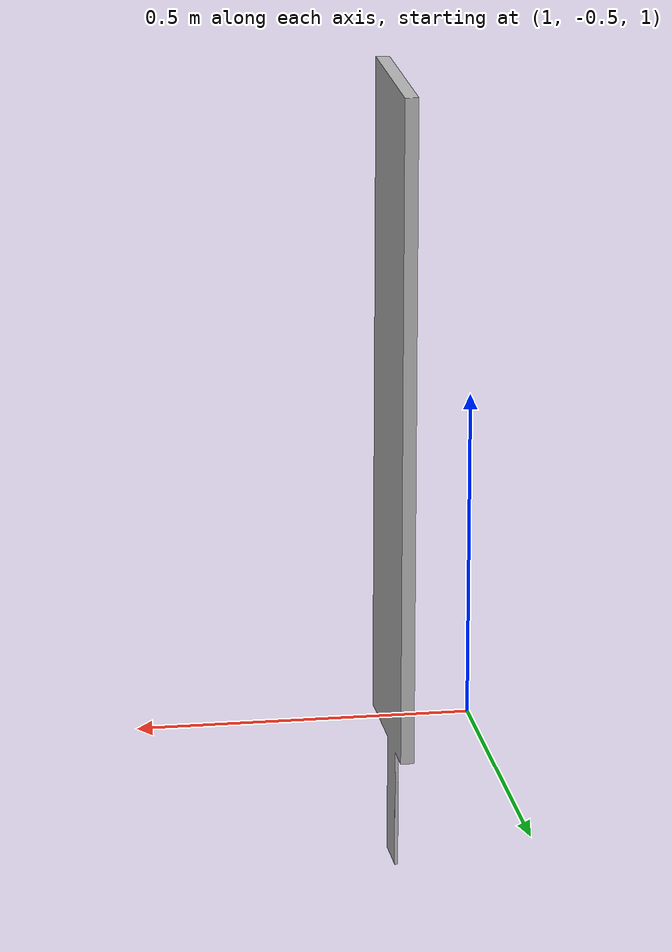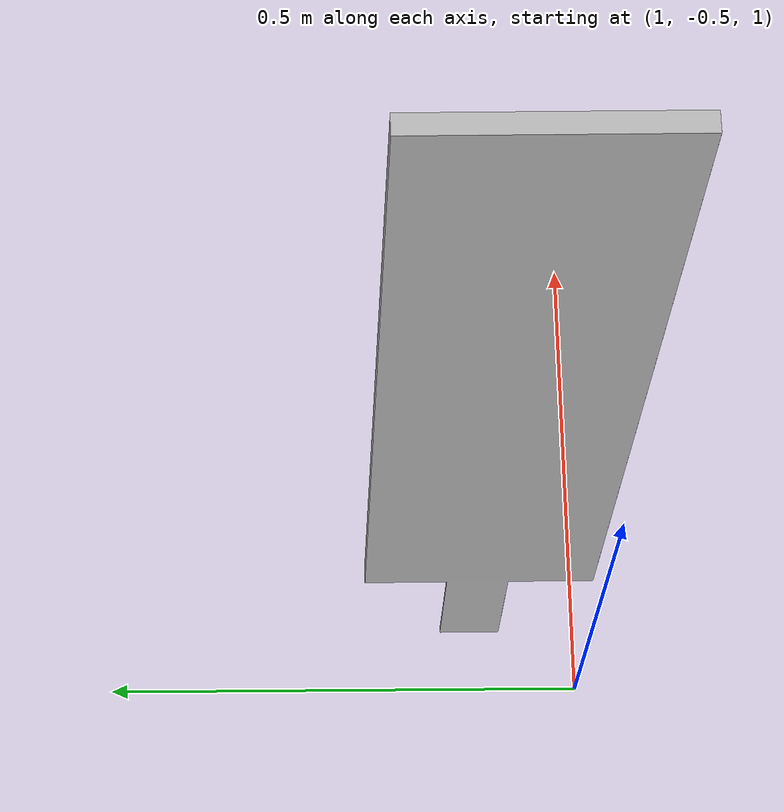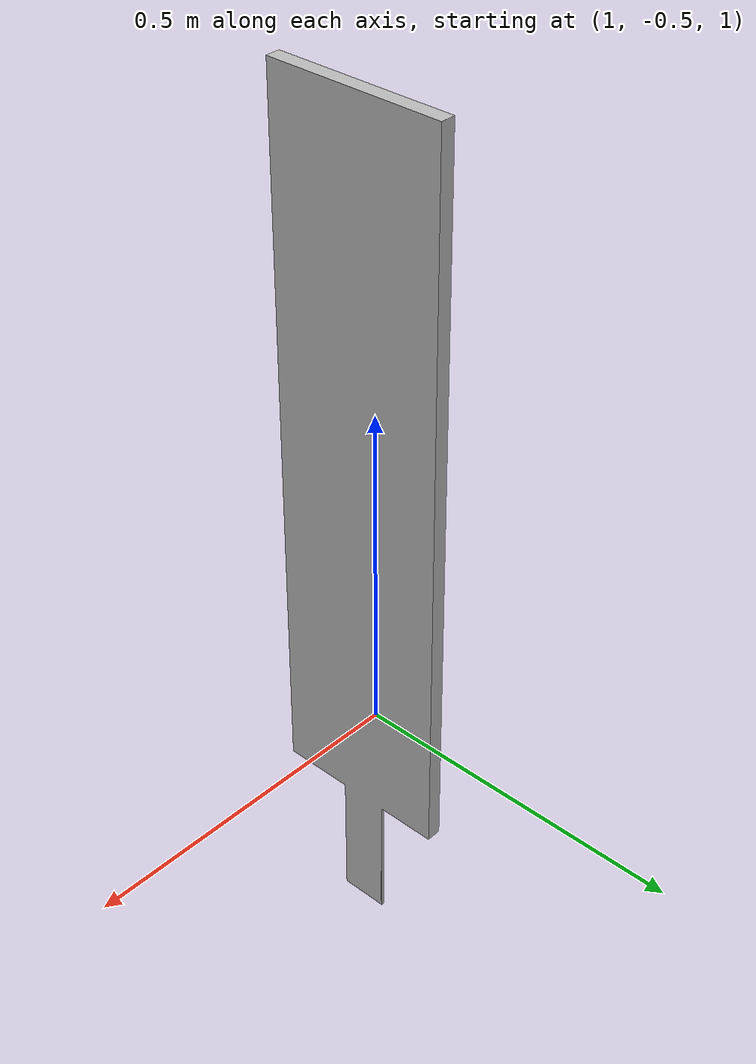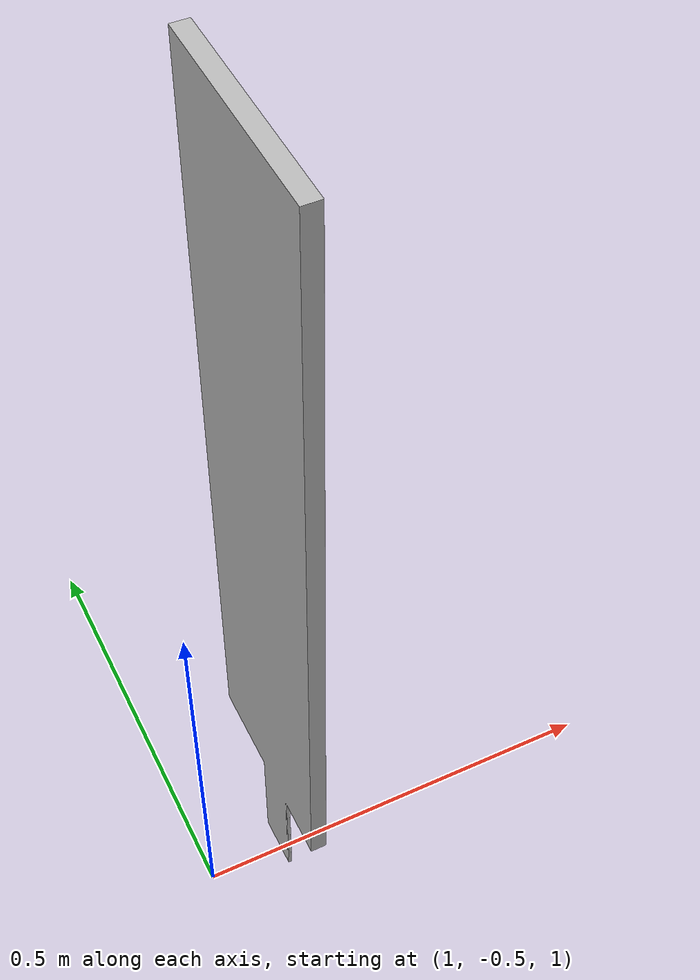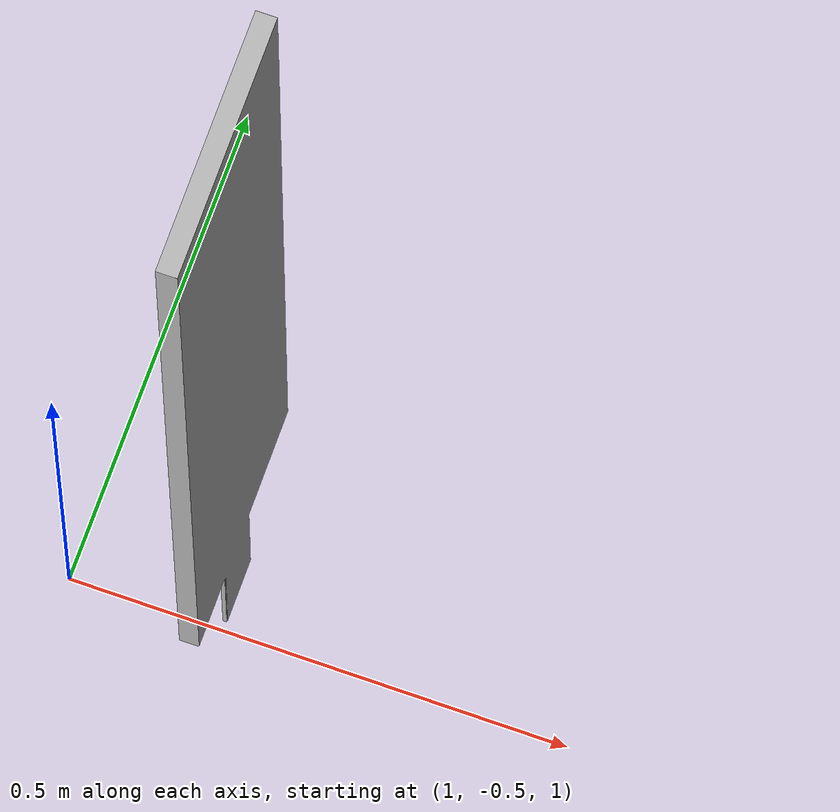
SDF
<?xml version="1.0"?>

<sdf version="1.4">
  <world name="basic_space">
    <physics name="default_physics" default="true" type="ode">
      <max_step_size>0.002</max_step_size>
      <real_time_factor>1</real_time_factor>
      <real_time_update_rate>500</real_time_update_rate>
    </physics>
    <scene>
      <ambient>0.5 0.5 0.5 1.0</ambient>
      <shadows>1</shadows>
      <sky>
        <time>24</time>
        <clouds>
          <mean_size>0.001</mean_size>
        </clouds>
      </sky>
      <grid>1</grid>
    </scene>

    <!-- Global Light Source -->
    <light type="directional" name="sun1">
      <pose>50 0 150 0 0 0</pose>
      <diffuse>1 1 1 1</diffuse>
      <specular>0.1 0.1 0.1 1</specular>
      <direction>0.3 0.3 -1</direction>
      <cast_shadows>false</cast_shadows>
    </light>

    <light type="directional" name="sun_diffuse_4">
      <pose>20 0 -90 0 0 0</pose>
      <diffuse>0.9 0.9 0.9 1</diffuse>
      <specular>0.2 0.2 0.2 1</specular>
      <direction>-1 0 0</direction>
      <cast_shadows>false</cast_shadows>
    </light>

    <!-- Include models -->
    <model name="grab_panel">
      <link name="panel_link">
        <pose>1.13 -0.4 1.51 0 0 3.143</pose>
        <self_collide>true</self_collide>
        <inertial>
          <inertia>
            <ixx>1</ixx>
            <ixy>0</ixy>
            <ixz>0</ixz>
            <iyy>2</iyy>
            <iyz>0</iyz>
            <izz>0.5</izz>
          </inertia>
          <mass>0.5</mass>
        </inertial>
        <visual name="grab_solar_panel_visual">
          <pose>0 0 0 0 0 0</pose>
          <geometry>
            <mesh>
              <uri>model://grab_solar_panel/meshes/grasp_panel.dae</uri>
              <scale>2 1 1</scale>
            </mesh>
          </geometry>
        </visual>
        <collision name="grab_solar_panel_collision">
          <pose>0 0 0 0 0 0</pose>
          <geometry>
            <mesh>
              <uri>model://grab_solar_panel/meshes/grasp_panel.dae</uri>
              <scale>3 1 1</scale>
            </mesh>
          </geometry>
          <surface>
            <friction>
              <ode>
                <!-- Arbitrary friction values -->
                <mu>10.0</mu>
                <mu2>10.0</mu2>
              </ode>
            </friction>
          </surface>
        </collision>
      </link>
    </model>

    <gui fullscreen="0">
      <camera name="user_camera">
        <pose frame=''>9.62 8.51 5.9 0 0.292 -2.36</pose>
        <view_controller>orbit</view_controller>
        <projection_type>perspective</projection_type>
      </camera>
    </gui>

    <gravity>0 0 0</gravity>
  </world>
</sdf>
